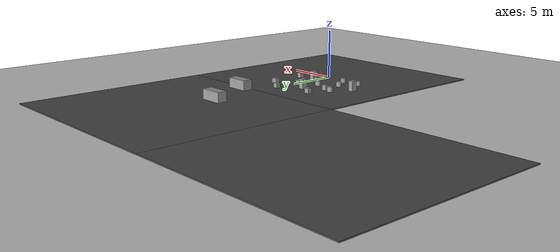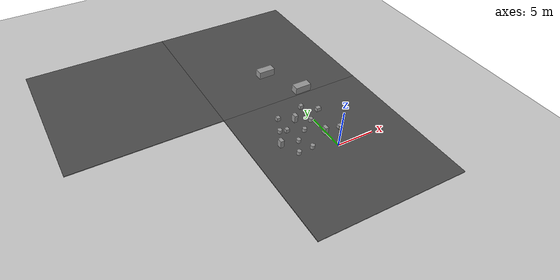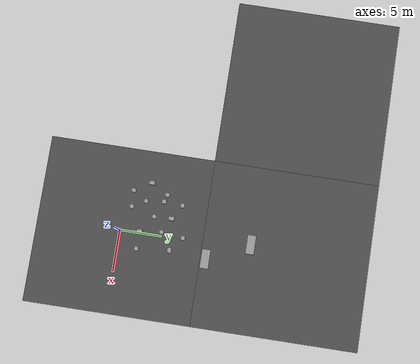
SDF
<sdf version="1.7">
 <world name="default">
  <model name="ground_plane">
   <static>1</static>
   <link name="link">
    <collision name="collision">
     <geometry><plane><normal>0 0 1</normal><size>100 100</size></plane></geometry>
     <surface>
      <contact><collide_bitmask>65535</collide_bitmask></contact>
      <friction><ode><mu>100</mu><mu2>50</mu2></ode></friction>
     </surface>
    </collision>
    <visual name="visual">
     <cast_shadows>0</cast_shadows>
     <geometry><plane><normal>0 0 1</normal><size>100 100</size></plane></geometry>
     <material>
      <script><uri>file://media/materials/scripts/gazebo.material</uri><name>Gazebo/Grey</name></script>
     </material>
    </visual>
   </link>
  </model>
  <model name="asphalt_plane">
   <static>1</static>
   <link name="link">
    <collision name="collision"><geometry><box><size>20 20 0.1</size></box></geometry></collision>
    <visual name="visual">
     <cast_shadows>0</cast_shadows>
     <geometry><box><size>20 20 0.1</size></box></geometry>
     <material>
      <script>
       <uri>model://asphalt_plane/materials/scripts</uri>
       <uri>model://asphalt_plane/materials/textures</uri>
       <name>vrc/asphalt</name>
      </script>
     </material>
    </visual>
   </link>
  </model>
  <model name="asphalt_plane_clone_4">
   <static>1</static>
   <link name="link">
    <collision name="collision"><geometry><box><size>20 20 0.1</size></box></geometry></collision>
    <visual name="visual">
     <cast_shadows>0</cast_shadows>
     <geometry><box><size>20 20 0.1</size></box></geometry>
     <material>
      <script>
       <uri>model://asphalt_plane/materials/scripts</uri>
       <uri>model://asphalt_plane/materials/textures</uri>
       <name>vrc/asphalt</name>
      </script>
     </material>
    </visual>
   </link>
   <pose>-20 20 0 0 -0 0</pose>
  </model>
  <model name="asphalt_plane_clone_5">
   <static>1</static>
   <link name="link">
    <collision name="collision"><geometry><box><size>20 20 0.1</size></box></geometry></collision>
    <visual name="visual">
     <cast_shadows>0</cast_shadows>
     <geometry><box><size>20 20 0.1</size></box></geometry>
     <material>
      <script>
       <uri>model://asphalt_plane/materials/scripts</uri>
       <uri>model://asphalt_plane/materials/textures</uri>
       <name>vrc/asphalt</name>
      </script>
     </material>
    </visual>
   </link>
   <pose>0 20 0 0 -0 0</pose>
  </model>
  <model name="unit_box_0_clone_0">
   <pose>1.49943 6.26197 0.301357 3e-06 0 1e-06</pose>
   <link name="link">
    <inertial>
     <mass>1</mass>
     <inertia>
      <ixx>0.166667</ixx>
      <ixy>0</ixy>
      <ixz>0</ixz>
      <iyy>0.166667</iyy>
      <iyz>0</iyz>
      <izz>0.166667</izz>
     </inertia>
    </inertial>
    <collision name="collision">
     <geometry><box><size>0.622689 0.467832 0.502712</size></box></geometry>
    </collision>
    <visual name="visual">
     <geometry><box><size>0.622689 0.467832 0.502712</size></box></geometry>
     <material>
      <script><name>Gazebo/Grey</name><uri>file://media/materials/scripts/gazebo.material</uri></script>
     </material>
    </visual>
   </link>
  </model>
  <model name="unit_box_0_clone_1">
   <pose>1.88701 2.35733 0.301356 0 -0 1e-06</pose>
   <link name="link">
    <inertial>
     <mass>1</mass>
     <inertia>
      <ixx>0.166667</ixx>
      <ixy>0</ixy>
      <ixz>0</ixz>
      <iyy>0.166667</iyy>
      <iyz>0</iyz>
      <izz>0.166667</izz>
     </inertia>
    </inertial>
    <collision name="collision">
     <geometry><box><size>0.495294 0.467832 0.502712</size></box></geometry>
    </collision>
    <visual name="visual">
     <geometry><box><size>0.495294 0.467832 0.502712</size></box></geometry>
     <material>
      <script><name>Gazebo/Grey</name><uri>file://media/materials/scripts/gazebo.material</uri></script>
     </material>
    </visual>
   </link>
  </model>
  <model name="unit_cylinder">
   <pose>-3.88535 2.58839 0.294835 0 -0 0.000328</pose>
   <link name="link">
    <inertial>
     <mass>1</mass>
     <inertia><ixx>0.145833</ixx><ixy>0</ixy><ixz>0</ixz><iyy>0.145833</iyy><iyz>0</iyz><izz>0.125</izz></inertia>
    </inertial>
    <collision name="collision">
     <geometry><cylinder><radius>0.264047</radius><length>0.48967</length></cylinder></geometry>
    </collision>
    <visual name="visual">
     <geometry><cylinder><radius>0.264047</radius><length>0.48967</length></cylinder></geometry>
     <material>
      <script><name>Gazebo/Grey</name><uri>file://media/materials/scripts/gazebo.material</uri></script>
     </material>
    </visual>
   </link>
  </model>
  <model name="unit_cylinder_clone_0">
   <pose>-3 1 0.294835 0 -0 0.000262</pose>
   <link name="link">
    <inertial>
     <mass>1</mass>
     <inertia><ixx>0.145833</ixx><ixy>0</ixy><ixz>0</ixz><iyy>0.145833</iyy><iyz>0</iyz><izz>0.125</izz></inertia>
    </inertial>
    <collision name="collision">
     <geometry><cylinder><radius>0.264047</radius><length>0.48967</length></cylinder></geometry>
    </collision>
    <visual name="visual">
     <geometry><cylinder><radius>0.264047</radius><length>0.48967</length></cylinder></geometry>
     <material>
      <script><name>Gazebo/Grey</name><uri>file://media/materials/scripts/gazebo.material</uri></script>
     </material>
    </visual>
   </link>
  </model>
  <model name="unit_cylinder_clone_2">
   <pose>-2.20479 3.85762 0.294836 -1e-06 -4e-06 0.000102</pose>
   <link name="link">
    <inertial>
     <mass>1</mass>
     <inertia><ixx>0.145833</ixx><ixy>0</ixy><ixz>0</ixz><iyy>0.145833</iyy><iyz>0</iyz><izz>0.125</izz></inertia>
    </inertial>
    <collision name="collision">
     <geometry><cylinder><radius>0.264047</radius><length>0.48967</length></cylinder></geometry>
    </collision>
    <visual name="visual">
     <geometry><cylinder><radius>0.264047</radius><length>0.48967</length></cylinder></geometry>
     <material>
      <script><name>Gazebo/Grey</name><uri>file://media/materials/scripts/gazebo.material</uri></script>
     </material>
    </visual>
   </link>
  </model>
  <model name="unit_cylinder_clone_3">
   <pose>-0.494253 5 0.294833 -1e-06 -6e-06 8.5e-05</pose>
   <link name="link">
    <inertial>
     <mass>1</mass>
     <inertia><ixx>0.145833</ixx><ixy>0</ixy><ixz>0</ixz><iyy>0.145833</iyy><iyz>0</iyz><izz>0.125</izz></inertia>
    </inertial>
    <collision name="collision">
     <geometry><cylinder><radius>0.264047</radius><length>0.48967</length></cylinder></geometry>
    </collision>
    <visual name="visual">
     <geometry><cylinder><radius>0.264047</radius><length>0.48967</length></cylinder></geometry>
     <material>
      <script><name>Gazebo/Grey</name><uri>file://media/materials/scripts/gazebo.material</uri></script>
     </material>
    </visual>
   </link>
  </model>
  <model name="unit_cylinder_clone_14">
   <pose>-4.99999 5 0.294827 -4e-06 -3e-06 0.000137</pose>
   <link name="link">
    <inertial>
     <mass>1</mass>
     <inertia><ixx>0.145833</ixx><ixy>0</ixy><ixz>0</ixz><iyy>0.145833</iyy><iyz>0</iyz><izz>0.125</izz></inertia>
    </inertial>
    <collision name="collision">
     <geometry><cylinder><radius>0.264047</radius><length>0.48967</length></cylinder></geometry>
    </collision>
    <visual name="visual">
     <geometry><cylinder><radius>0.264047</radius><length>0.48967</length></cylinder></geometry>
     <material>
      <script><name>Gazebo/Grey</name><uri>file://media/materials/scripts/gazebo.material</uri></script>
     </material>
    </visual>
   </link>
  </model>
  <model name="unit_cylinder_clone_16">
   <pose>-4.94241 0.924887 0.294826 0 -2e-06 0.000178</pose>
   <link name="link">
    <inertial>
     <mass>1</mass>
     <inertia><ixx>0.145833</ixx><ixy>0</ixy><ixz>0</ixz><iyy>0.145833</iyy><iyz>0</iyz><izz>0.125</izz></inertia>
    </inertial>
    <collision name="collision">
     <geometry><cylinder><radius>0.264047</radius><length>0.48967</length></cylinder></geometry>
    </collision>
    <visual name="visual">
     <geometry><cylinder><radius>0.264047</radius><length>0.48967</length></cylinder></geometry>
     <material>
      <script><name>Gazebo/Grey</name><uri>file://media/materials/scripts/gazebo.material</uri></script>
     </material>
    </visual>
   </link>
  </model>
  <model name="unit_box_0_clone_1_clone">
   <pose>-4.15621 4.74188 0.301356 0 -0 1e-06</pose>
   <link name="link">
    <inertial>
     <mass>1</mass>
     <inertia>
      <ixx>0.166667</ixx>
      <ixy>0</ixy>
      <ixz>0</ixz>
      <iyy>0.166667</iyy>
      <iyz>0</iyz>
      <izz>0.166667</izz>
     </inertia>
    </inertial>
    <collision name="collision">
     <geometry><box><size>0.495294 0.467832 0.502712</size></box></geometry>
    </collision>
    <visual name="visual">
     <geometry><box><size>0.495294 0.467832 0.502712</size></box></geometry>
     <material>
      <script><name>Gazebo/Grey</name><uri>file://media/materials/scripts/gazebo.material</uri></script>
     </material>
    </visual>
   </link>
  </model>
  <model name="unit_box_0_clone_1_clone_0">
   <pose>-4 7 0.301356 0 -0 1e-06</pose>
   <link name="link">
    <inertial>
     <mass>1</mass>
     <inertia>
      <ixx>0.166667</ixx>
      <ixy>0</ixy>
      <ixz>0</ixz>
      <iyy>0.166667</iyy>
      <iyz>0</iyz>
      <izz>0.166667</izz>
     </inertia>
    </inertial>
    <collision name="collision">
     <geometry><box><size>0.495294 0.467832 0.502712</size></box></geometry>
    </collision>
    <visual name="visual">
     <geometry><box><size>0.495294 0.467832 0.502712</size></box></geometry>
     <material>
      <script><name>Gazebo/Grey</name><uri>file://media/materials/scripts/gazebo.material</uri></script>
     </material>
    </visual>
   </link>
  </model>
  <model name="unit_box_0_clone_1_clone_1">
   <pose>-0.198532 7.63401 0.301356 0 -0 1e-06</pose>
   <link name="link">
    <inertial>
     <mass>1</mass>
     <inertia>
      <ixx>0.166667</ixx>
      <ixy>0</ixy>
      <ixz>0</ixz>
      <iyy>0.166667</iyy>
      <iyz>0</iyz>
      <izz>0.166667</izz>
     </inertia>
    </inertial>
    <collision name="collision">
     <geometry><box><size>0.495294 0.467832 0.502712</size></box></geometry>
    </collision>
    <visual name="visual">
     <geometry><box><size>0.495294 0.467832 0.502712</size></box></geometry>
     <material>
      <script><name>Gazebo/Grey</name><uri>file://media/materials/scripts/gazebo.material</uri></script>
     </material>
    </visual>
   </link>
  </model>
  <model name="unit_box_3">
   <pose>-0.185436 2.4314 0.55 0 -0 0</pose>
   <link name="link">
    <inertial>
     <mass>1</mass>
     <inertia>
      <ixx>0.166667</ixx>
      <ixy>0</ixy>
      <ixz>0</ixz>
      <iyy>0.166667</iyy>
      <iyz>0</iyz>
      <izz>0.166667</izz>
     </inertia>
    </inertial>
    <collision name="collision"><geometry><box><size>0.473217 0.637104 1</size></box></geometry></collision>
    <visual name="visual">
     <geometry><box><size>0.473217 0.637104 1</size></box></geometry>
     <material>
      <script><name>Gazebo/Grey</name><uri>file://media/materials/scripts/gazebo.material</uri></script>
     </material>
    </visual>
   </link>
  </model>
  <model name="unit_box_3_clone">
   <pose>-2.24652 5.9397 0.55 0 -0 0</pose>
   <link name="link">
    <inertial>
     <mass>1</mass>
     <inertia>
      <ixx>0.166667</ixx>
      <ixy>0</ixy>
      <ixz>0</ixz>
      <iyy>0.166667</iyy>
      <iyz>0</iyz>
      <izz>0.166667</izz>
     </inertia>
    </inertial>
    <collision name="collision"><geometry><box><size>0.473217 0.637104 1</size></box></geometry></collision>
    <visual name="visual">
     <geometry><box><size>0.473217 0.637104 1</size></box></geometry>
     <material>
      <script><name>Gazebo/Grey</name><uri>file://media/materials/scripts/gazebo.material</uri></script>
     </material>
    </visual>
   </link>
  </model>
  <model name="unit_box_3_clone_2">
   <pose>-6.12917 2.98269 0.55 0 -0 0</pose>
   <link name="link">
    <inertial>
     <mass>1</mass>
     <inertia>
      <ixx>0.166667</ixx>
      <ixy>0</ixy>
      <ixz>0</ixz>
      <iyy>0.166667</iyy>
      <iyz>0</iyz>
      <izz>0.166667</izz>
     </inertia>
    </inertial>
    <collision name="collision"><geometry><box><size>0.473217 0.637104 1</size></box></geometry></collision>
    <visual name="visual">
     <geometry><box><size>0.473217 0.637104 1</size></box></geometry>
     <material>
      <script><name>Gazebo/Grey</name><uri>file://media/materials/scripts/gazebo.material</uri></script>
     </material>
    </visual>
   </link>
  </model>
  <model name="unit_box_5">
   <pose>1.868 10.6312 0.549967 0 2.9e-05 0</pose>
   <link name="link">
    <inertial>
     <mass>1</mass>
     <inertia>
      <ixx>0.166667</ixx>
      <ixy>0</ixy>
      <ixz>0</ixz>
      <iyy>0.166667</iyy>
      <iyz>0</iyz>
      <izz>0.166667</izz>
     </inertia>
    </inertial>
    <collision name="collision"><geometry><box><size>2.25366 1 1</size></box></geometry></collision>
    <visual name="visual">
     <geometry><box><size>2.25366 1 1</size></box></geometry>
     <material>
      <script><name>Gazebo/Grey</name><uri>file://media/materials/scripts/gazebo.material</uri></script>
     </material>
    </visual>
   </link>
  </model>
  <model name="unit_box_5_clone">
   <pose>-0.609355 15.7172 0.549967 0 -2.9e-05 0</pose>
   <link name="link">
    <inertial>
     <mass>1</mass>
     <inertia>
      <ixx>0.166667</ixx>
      <ixy>0</ixy>
      <ixz>0</ixz>
      <iyy>0.166667</iyy>
      <iyz>0</iyz>
      <izz>0.166667</izz>
     </inertia>
    </inertial>
    <collision name="collision"><geometry><box><size>2.25366 1 1</size></box></geometry></collision>
    <visual name="visual">
     <geometry><box><size>2.25366 1 1</size></box></geometry>
     <material>
      <script><name>Gazebo/Grey</name><uri>file://media/materials/scripts/gazebo.material</uri></script>
     </material>
    </visual>
   </link>
  </model>
 </world>
</sdf>
